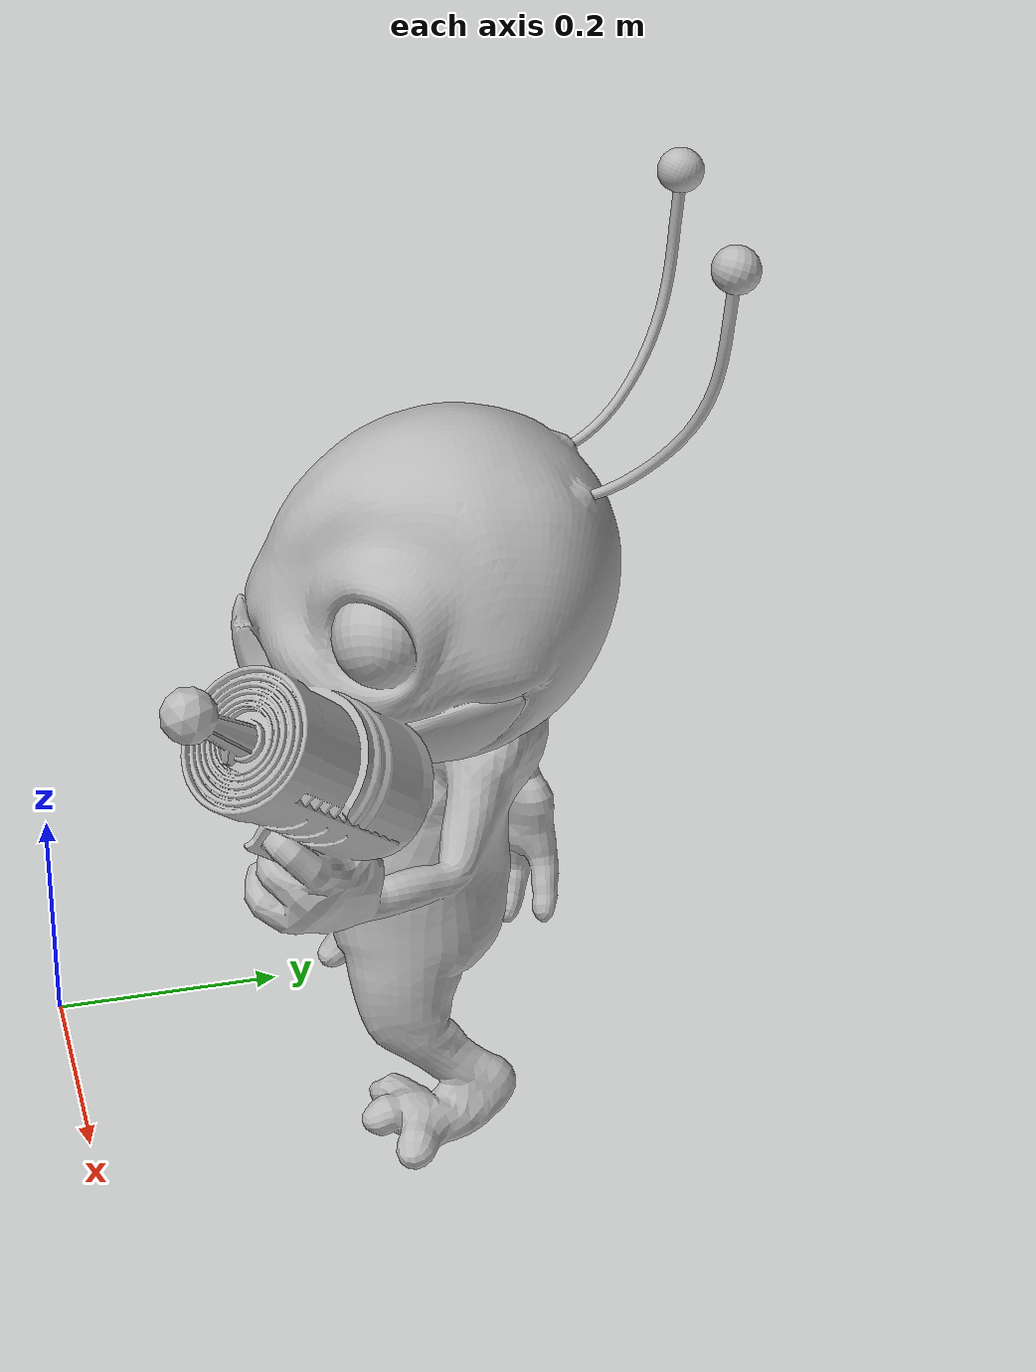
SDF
<?xml version="1.0" ?>
<sdf version='1.4'>
  <model name="alien1">
      <static>1</static>
        <link name='link_1'>
            <visual name='visual'>
            <pose frame=''>0 0 0 0 0 0</pose>
            <geometry>
            <mesh>
                <uri>model://alien1/meshes/alien.dae</uri>
                <scale>0.5 0.5 0.5</scale>
            </mesh>
            </geometry>
            <cast_shadows>0</cast_shadows>
            <transparency>0</transparency>
        </visual>

        <collision name='collision'>
            <laser_retro>0</laser_retro>
            <pose frame=''>0 0 0 0 0 0</pose>
            <geometry>
            <mesh>
                <uri>model://alien1/meshes/alien.stl</uri>
                <scale>0.5 0.5 0.5</scale>
            </mesh>
            </geometry>
        </collision>
        </link>
  </model>
</sdf>
